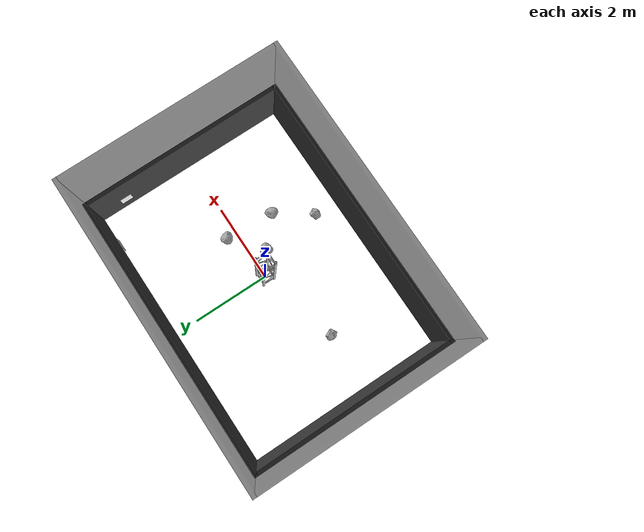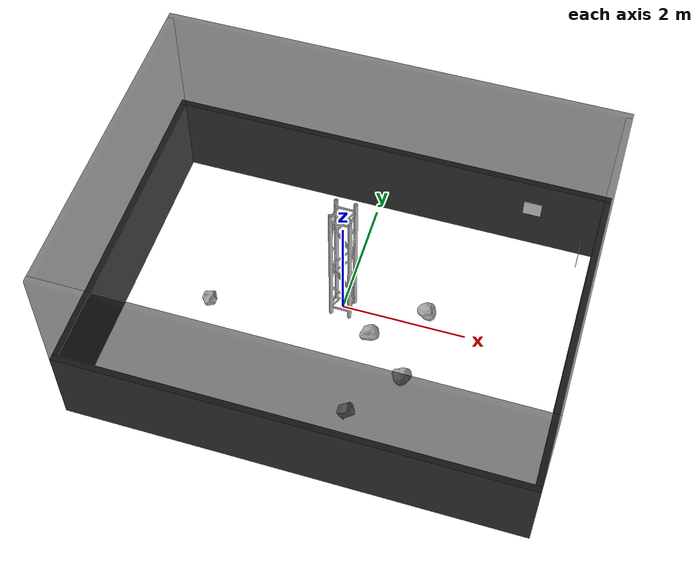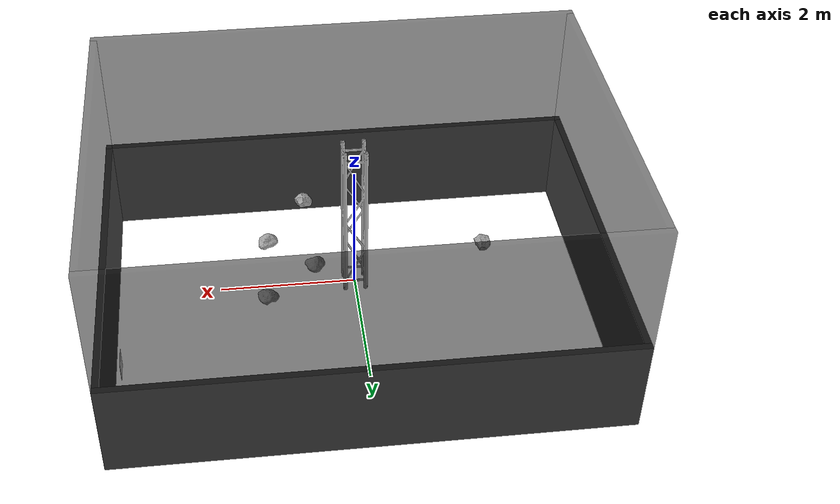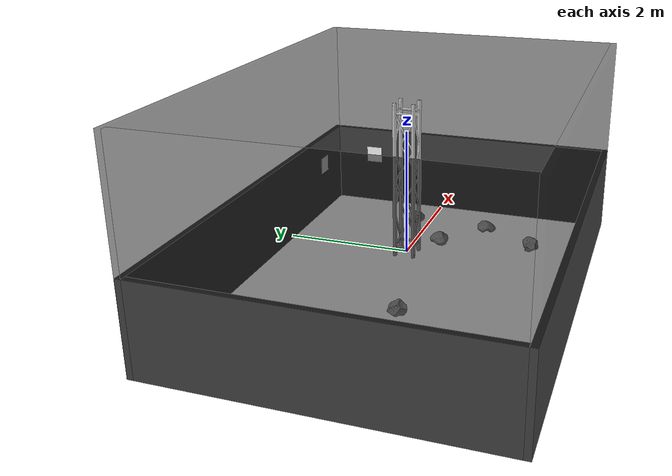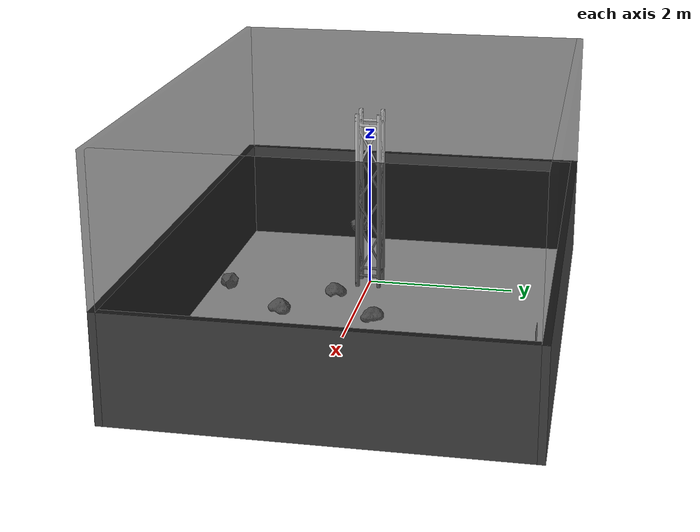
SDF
<sdf version="1.7">
 <world name="default">
  <plugin filename="gz-sim-physics-system" name="gz::sim::systems::Physics"/>
  <plugin filename="gz-sim-user-commands-system" name="gz::sim::systems::UserCommands"/>
  <plugin filename="gz-sim-scene-broadcaster-system" name="gz::sim::systems::SceneBroadcaster"/>
  <plugin filename="gz-sim-sensors-system" name="gz::sim::systems::Sensors">
   <render_engine>ogre2</render_engine>
  </plugin>
  <policies><include_gui_default_plugins>true</include_gui_default_plugins></policies>
  <light name="sun" type="directional">
   <cast_shadows>0</cast_shadows>
   <pose>0 0 10 0 0 0</pose>
   <diffuse>0.4 0.4 0.4 1</diffuse>
   <specular>0.1 0.1 0.1 1</specular>
   <attenuation>
    <range>500</range>
    <constant>0.8</constant>
    <linear>0.02</linear>
    <quadratic>0.001</quadratic>
   </attenuation>
   <direction>0 0 -0.9</direction>
  </light>
  <scene><ambient>0.4 0.4 0.4 1</ambient><shadows>1</shadows></scene>
  <physics type="ode">
   <max_step_size>0.01</max_step_size>
   <real_time_factor>1</real_time_factor>
   <real_time_update_rate>1000</real_time_update_rate>
  </physics>
  <gravity>0 0 -9.81</gravity>
  <model name="arena_wall_long">
   <pose>0 -2.68 0.1 0 0 0</pose>
   <static>1</static>
   <link name="arena_wall_long_link">
    <visual name="arena_wall_long">
     <geometry><box><size>7.42 0.1 1.5</size></box></geometry>
     <material>
      <pbr><metal><albedo_map>model://walls/wall_texture.png</albedo_map></metal></pbr>
      <ambient>0.25 0.25 0.25 1.0</ambient>
      <diffuse>0.25 0.25 0.25 1.0</diffuse>
      <specular>0.25 0.25 0.25 1.0</specular>
     </material>
    </visual>
    <collision name="arena_wall_long_collision">
     <geometry><box><size>7.42 0.1 1.5</size></box></geometry>
     <surface><friction><ode><mu>0.3</mu><mu2>0.3</mu2></ode></friction></surface>
    </collision>
   </link>
  </model>
  <model name="arena_wall_long_2">
   <pose>0 2.68 0.1 0 0 0</pose>
   <static>1</static>
   <link name="arena_wall_long_2_link">
    <visual name="arena_wall_long_2">
     <geometry><box><size>7.42 0.1 1.5</size></box></geometry>
     <material>
      <pbr><metal><albedo_map>model://walls/wall_texture.png</albedo_map></metal></pbr>
      <ambient>0.25 0.25 0.25 1.0</ambient>
      <diffuse>0.25 0.25 0.25 1.0</diffuse>
      <specular>0.25 0.25 0.25 1.0</specular>
     </material>
    </visual>
    <collision name="arena_wall_long_2_collision">
     <geometry><box><size>7.42 0.1 1.5</size></box></geometry>
     <surface><friction><ode><mu>0.3</mu><mu2>0.3</mu2></ode></friction></surface>
    </collision>
   </link>
  </model>
  <model name="arena_wall_short">
   <pose>3.66 0 0.1 0 0 0</pose>
   <static>1</static>
   <link name="arena_wall_short_link">
    <visual name="arena_wall_short">
     <geometry><box><size>0.1 5.26 1.5</size></box></geometry>
     <material>
      <pbr><metal><albedo_map>model://walls/wall_texture.png</albedo_map></metal></pbr>
      <ambient>0.25 0.25 0.25 1.0</ambient>
      <diffuse>0.25 0.25 0.25 1.0</diffuse>
      <specular>0.25 0.25 0.25 1.0</specular>
     </material>
    </visual>
    <collision name="arena_wall_short_collision">
     <geometry><box><size>0.1 5.26 1.5</size></box></geometry>
     <surface><friction><ode><mu>0.3</mu><mu2>0.3</mu2></ode></friction></surface>
    </collision>
   </link>
  </model>
  <model name="arena_wall_short_2">
   <pose>-3.66 0 0.1 0 0 0</pose>
   <static>1</static>
   <link name="arena_wall_short_2_link">
    <visual name="arena_wall_short_2">
     <geometry><box><size>0.1 5.26 1.5</size></box></geometry>
     <material>
      <pbr><metal><albedo_map>model://walls/wall_texture.png</albedo_map></metal></pbr>
      <ambient>0.25 0.25 0.25 1.0</ambient>
      <diffuse>0.25 0.25 0.25 1.0</diffuse>
      <specular>0.25 0.25 0.25 1.0</specular>
     </material>
    </visual>
    <collision name="arena_wall_short_2_collision">
     <geometry><box><size>0.1 5.26 1.5</size></box></geometry>
     <surface><friction><ode><mu>0.3</mu><mu2>0.3</mu2></ode></friction></surface>
    </collision>
   </link>
  </model>
  <model name="arena_glass_short">
   <pose>3.66 0 1.85 0 0 0</pose>
   <static>1</static>
   <link name="arena_glass_short_link">
    <visual name="arena_glass_short">
     <geometry><box><size>0.1 5.26 2.0</size></box></geometry>
     <material><ambient>0 0 0 0.5</ambient><diffuse>0 0 0 0.5</diffuse><specular>0 0 0 0.5</specular></material>
    </visual>
    <collision name="arena_glass_short_collision">
     <geometry><box><size>0.1 5 2.0</size></box></geometry>
     <surface><friction><ode><mu>0.3</mu><mu2>0.3</mu2></ode></friction></surface>
    </collision>
   </link>
  </model>
  <model name="arena_glass_short_2">
   <pose>-3.66 0 1.85 0 0 0</pose>
   <static>1</static>
   <link name="arena_glass_short_2_link">
    <visual name="arena_glass_short_2">
     <geometry><box><size>0.1 5.26 2.0</size></box></geometry>
     <material><ambient>0 0 0 0.5</ambient><diffuse>0 0 0 0.5</diffuse><specular>0 0 0 0.5</specular></material>
    </visual>
    <collision name="arena_glass_short_2_collision">
     <geometry><box><size>0.1 5.26 2.0</size></box></geometry>
     <surface><friction><ode><mu>0.3</mu><mu2>0.3</mu2></ode></friction></surface>
    </collision>
   </link>
  </model>
  <model name="arena_glass_long">
   <pose>0 2.68 1.85 0 0 0</pose>
   <static>1</static>
   <link name="arena_glass_long_link">
    <visual name="arena_glass_long">
     <geometry><box><size>7.42 0.1 2</size></box></geometry>
     <material><ambient>0 0 0 0.5</ambient><diffuse>0 0 0 0.5</diffuse><specular>0 0 0 0.5</specular></material>
    </visual>
    <collision name="arena_glass_long_collision">
     <geometry><box><size>7.42 0.1 2</size></box></geometry>
     <surface><friction><ode><mu>0.3</mu><mu2>0.3</mu2></ode></friction></surface>
    </collision>
   </link>
  </model>
  <model name="arena_glass_long_2">
   <pose>0 -2.68 1.85 0 0 0</pose>
   <static>1</static>
   <link name="arena_glass_long_2_link">
    <visual name="arena_wall_short_2">
     <geometry><box><size>7.42 0.1 2</size></box></geometry>
     <material><ambient>0 0 0 0.5</ambient><diffuse>0 0 0 0.5</diffuse><specular>0 0 0 0.5</specular></material>
    </visual>
    <collision name="arena_wall_short_2_collision">
     <geometry><box><size>7.42 0.1 2</size></box></geometry>
     <surface><friction><ode><mu>0.3</mu><mu2>0.3</mu2></ode></friction></surface>
    </collision>
   </link>
  </model>
  <model name="column">
   <pose>0 0 -0.02 0 0 0</pose>
   <static>1</static>
   <link name="column_link">
    <visual name="column">
     <geometry><mesh><uri>model://column/column.stl</uri><scale>2.5 2.5 2.5</scale></mesh></geometry>
     <material>
      <ambient>0.75 0.75 0.75 1.0</ambient>
      <diffuse>0.75 0.75 0.75 1.0</diffuse>
      <specular>0.75 0.75 0.75 1.0</specular>
      <emissive>0 0 0 0</emissive>
     </material>
    </visual>
    <collision name="column_collision">
     <geometry><mesh><uri>model://column/column.stl</uri><scale>2.5 2.5 2.5</scale></mesh></geometry>
     <surface><friction><ode><mu>0.3</mu><mu2>0.3</mu2></ode></friction></surface>
    </collision>
   </link>
  </model>
  <model name="rock_rough">
   <pose>-2.01943 -0.546468 0.05 0 0 -2.17367</pose>
   <self_collide>1</self_collide>
   <static>0</static>
   <link name="rock_rough_link">
    <inertial><mass>5.0</mass><inertia><ixx>3.0</ixx><iyy>3.0</iyy><izz>3.0</izz></inertia></inertial>
    <velocity_decay><linear>0.39</linear><angular>0.9</angular></velocity_decay>
    <visual name="rock_rough">
     <geometry><mesh><uri>model://rock_rough/rock_rough.stl</uri><scale>1 1 1</scale></mesh></geometry>
     <material>
      <ambient>0.65 0.65 0.65 1</ambient>
      <diffuse>0.65 0.65 0.65 1</diffuse>
      <specular>0.65 0.65 0.65 1</specular>
      <emissive>0 0 0 0</emissive>
     </material>
    </visual>
    <collision name="rock_rough_collision">
     <geometry><mesh><uri>model://rock_rough/rock_rough.stl</uri><scale>1 1 1</scale></mesh></geometry>
     <surface><friction><ode><mu>1.5</mu><mu2>1.5</mu2></ode></friction></surface>
    </collision>
   </link>
  </model>
  <model name="rock_rough_2">
   <pose>0.63 -1.84 0.05 0 0 -0.62</pose>
   <self_collide>1</self_collide>
   <static>0</static>
   <link name="rock_rough_2_link">
    <inertial><mass>5.0</mass><inertia><ixx>3.0</ixx><iyy>3.0</iyy><izz>3.0</izz></inertia></inertial>
    <velocity_decay><linear>0.39</linear><angular>0.9</angular></velocity_decay>
    <visual name="rock_rough_2">
     <geometry><mesh><uri>model://rock_rough/rock_rough.stl</uri><scale>1 1 1</scale></mesh></geometry>
     <material>
      <ambient>0.65 0.65 0.65 1</ambient>
      <diffuse>0.65 0.65 0.65 1</diffuse>
      <specular>0.65 0.65 0.65 1</specular>
      <emissive>0 0 0 0</emissive>
     </material>
    </visual>
    <collision name="rock_rough_2_collision">
     <geometry><mesh><uri>model://rock_rough/rock_rough.stl</uri><scale>1 1 1</scale></mesh></geometry>
    </collision>
   </link>
  </model>
  <model name="rock_round">
   <pose>1.32307 0.270163 0.05 0 0 0.846674</pose>
   <self_collide>1</self_collide>
   <static>0</static>
   <link name="rock_round_link">
    <inertial><mass>5.0</mass><inertia><ixx>3.0</ixx><iyy>3.0</iyy><izz>3.0</izz></inertia></inertial>
    <velocity_decay><linear>0.39</linear><angular>0.9</angular></velocity_decay>
    <visual name="rock_round">
     <geometry><mesh><uri>model://rock_round/rock_round.stl</uri><scale>1 1 1</scale></mesh></geometry>
     <material>
      <ambient>0.65 0.65 0.65 1</ambient>
      <diffuse>0.65 0.65 0.65 1</diffuse>
      <specular>0.65 0.65 0.65 1</specular>
      <emissive>0 0 0 0</emissive>
     </material>
    </visual>
    <collision name="rock_round_collision">
     <geometry><mesh><uri>model://rock_round/rock_round.stl</uri><scale>1 1 1</scale></mesh></geometry>
    </collision>
   </link>
  </model>
  <model name="rock_round_2">
   <pose>0.56 -0.39 0.05 0 0 -0.80</pose>
   <self_collide>1</self_collide>
   <static>0</static>
   <link name="rock_round_2_link">
    <inertial><mass>5.0</mass><inertia><ixx>3.0</ixx><iyy>3.0</iyy><izz>3.0</izz></inertia></inertial>
    <velocity_decay><linear>0.39</linear><angular>0.9</angular></velocity_decay>
    <visual name="rock_round_2">
     <geometry><mesh><uri>model://rock_round/rock_round.stl</uri><scale>1 1 1</scale></mesh></geometry>
     <material>
      <ambient>0.65 0.65 0.65 1</ambient>
      <diffuse>0.65 0.65 0.65 1</diffuse>
      <specular>0.65 0.65 0.65 1</specular>
      <emissive>0 0 0 0</emissive>
     </material>
    </visual>
    <collision name="rock_round_2_collision">
     <geometry><mesh><uri>model://rock_round/rock_round.stl</uri><scale>1 1 1</scale></mesh></geometry>
    </collision>
   </link>
  </model>
  <model name="rock_round_3">
   <pose>1.25 -1.0 0.05 0 0 2.5</pose>
   <self_collide>1</self_collide>
   <static>0</static>
   <link name="rock_round_3_link">
    <inertial><mass>5.0</mass><inertia><ixx>3.0</ixx><iyy>3.0</iyy><izz>3.0</izz></inertia></inertial>
    <velocity_decay><linear>0.39</linear><angular>0.9</angular></velocity_decay>
    <visual name="rock_round_3">
     <geometry><mesh><uri>model://rock_round/rock_round.stl</uri><scale>1 1 1</scale></mesh></geometry>
     <material>
      <ambient>0.65 0.65 0.65 1</ambient>
      <diffuse>0.65 0.65 0.65 1</diffuse>
      <specular>0.65 0.65 0.65 1</specular>
      <emissive>0 0 0 0</emissive>
     </material>
    </visual>
    <collision name="rock_round_3_collision">
     <geometry><mesh><uri>model://rock_round/rock_round.stl</uri><scale>1 1 1</scale></mesh></geometry>
    </collision>
   </link>
  </model>
  <model name="tag_36_11_00007">
   <pose>3.4 1.8 0.4 0 -1.58 0</pose>
   <static>1</static>
   <link name="link">
    <visual name="tag_36_11_00007">
     <geometry><box><size>0.3 0.3 0.005</size></box></geometry>
     <material>
      <pbr>
       <metal>
        <albedo_map>model://apriltags/tag_36_11_00007/materials/textures/tag_36_11_00007.png</albedo_map>
       </metal>
      </pbr>
      <ambient>1.0 1.0 1.0 1.0</ambient>
      <diffuse>1.0 1.0 1.0 1.0</diffuse>
      <specular>1.0 1.0 1.0 1.0</specular>
      <emissive>0 0 0 1.0</emissive>
     </material>
    </visual>
    <collision name="tag_36_11_00007_collision">
     <geometry><box><size>0.3 0.3 0.005</size></box></geometry>
    </collision>
   </link>
  </model>
  <model name="tag_36_11_00011">
   <pose>2.5 2.5 0.4 1.58 0 0</pose>
   <static>1</static>
   <link name="link">
    <visual name="tag_36_11_00011">
     <geometry><box><size>0.3 0.3 0.005</size></box></geometry>
     <material>
      <pbr>
       <metal>
        <albedo_map>model://apriltags/tag_36_11_00011/materials/textures/tag_36_11_00011.png</albedo_map>
       </metal>
      </pbr>
      <ambient>1.0 1.0 1.0 1.0</ambient>
      <diffuse>1.0 1.0 1.0 1.0</diffuse>
      <specular>1.0 1.0 1.0 1.0</specular>
      <emissive>0 0 0 1.0</emissive>
     </material>
    </visual>
    <collision name="tag_36_11_00011_collision">
     <geometry><box><size>0.3 0.3 0.005</size></box></geometry>
    </collision>
   </link>
  </model>
 </world>
</sdf>
